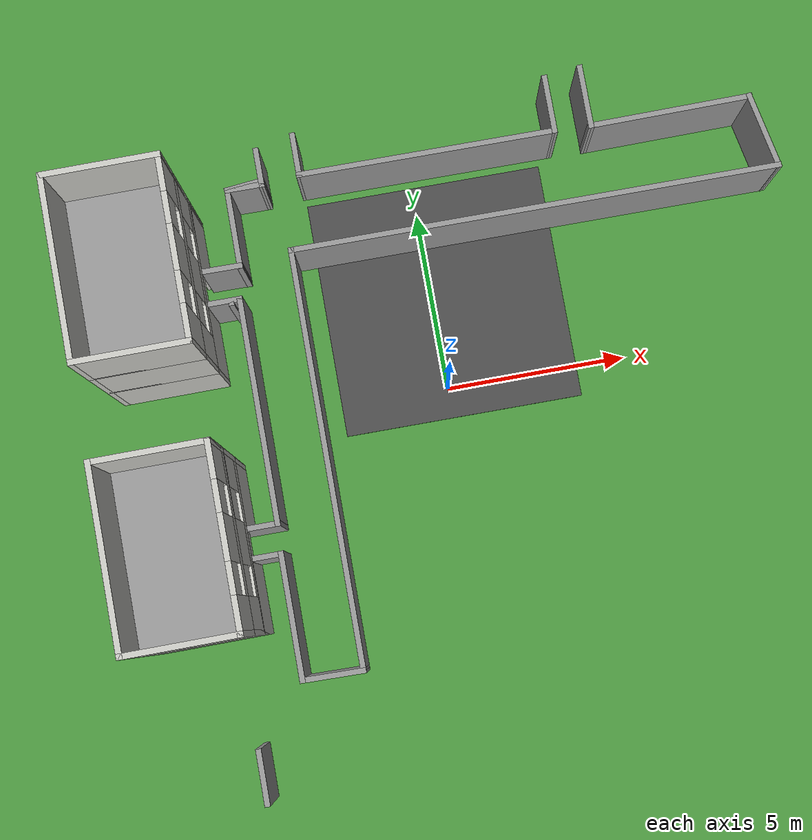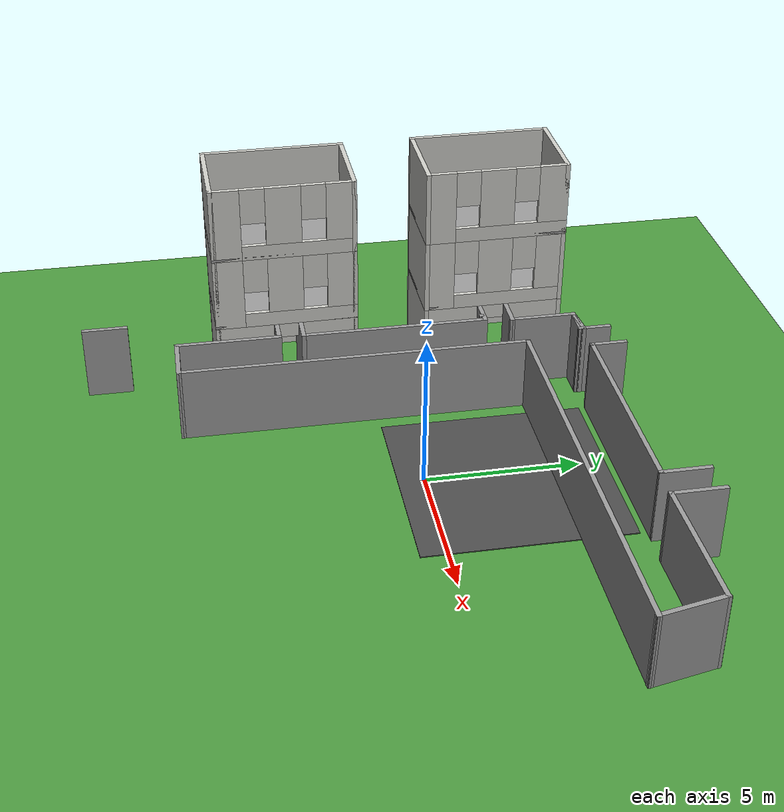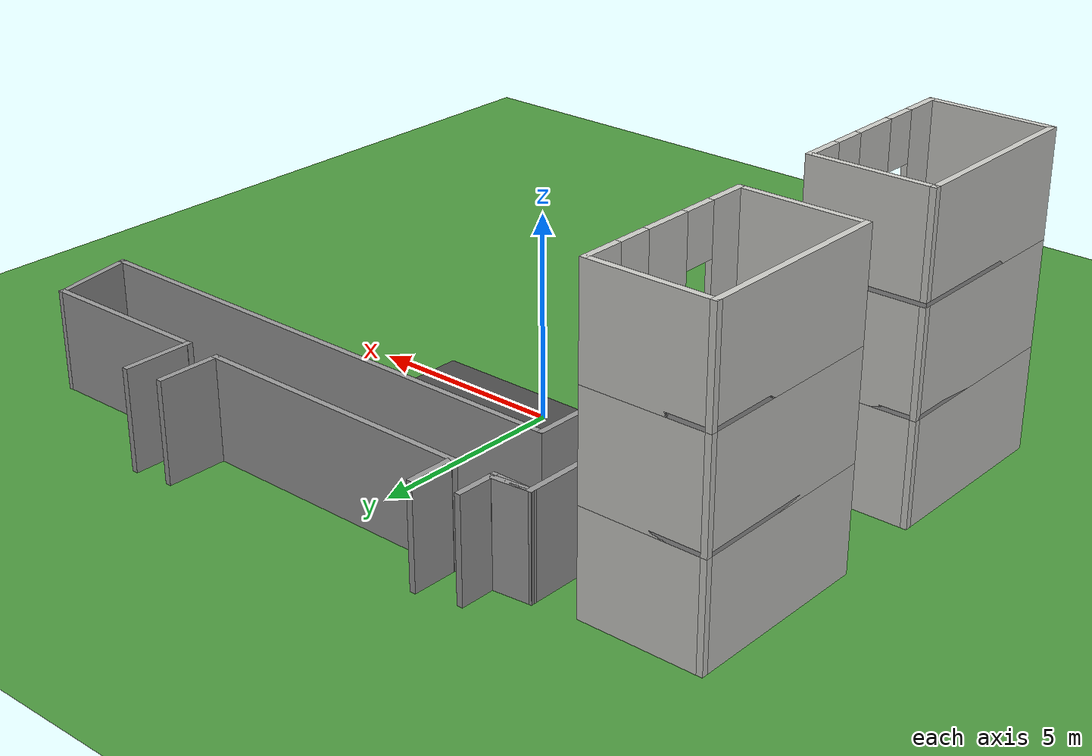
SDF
<sdf version="1.7">
 <world name="default">
  <model name="ground_plane">
   <static>1</static>
   <link name="link">
    <collision name="collision">
     <geometry><plane><normal>0 0 1</normal><size>100 100</size></plane></geometry>
     <surface><friction><ode><mu>100</mu><mu2>50</mu2></ode></friction></surface>
    </collision>
    <visual name="visual">
     <cast_shadows>0</cast_shadows>
     <geometry><plane><normal>0 0 1</normal><size>100 100</size></plane></geometry>
     <material>
      <script><uri>file://media/materials/scripts/gazebo.material</uri><name>Gazebo/Grass</name></script>
     </material>
    </visual>
   </link>
  </model>
  <model name="asphalt_plane">
   <static>1</static>
   <link name="link">
    <collision name="collision"><geometry><box><size>6.66663 6.66668 0.033333</size></box></geometry></collision>
    <visual name="visual">
     <cast_shadows>0</cast_shadows>
     <geometry><box><size>6.66663 6.66668 0.033333</size></box></geometry>
     <material>
      <script>
       <uri>model://asphalt_plane/materials/scripts</uri>
       <uri>model://asphalt_plane/materials/textures</uri>
       <name>vrc/asphalt</name>
      </script>
     </material>
    </visual>
   </link>
   <pose>0.322432 2.4947 0 0 -0 0</pose>
  </model>
  <model name="apt_0_clone">
   <pose>-7.51135 3.50237 0 0 -0 1.5769</pose>
   <link name="Floor_10">
    <collision name="Floor_10_Collision">
     <geometry><box><size>4.75 3 0.1</size></box></geometry>
     <pose>0 0 0.05 0 -0 0</pose>
    </collision>
    <visual name="Floor_10_Visual">
     <pose>0 0 0.05 0 -0 0</pose>
     <geometry><box><size>4.75 3 0.1</size></box></geometry>
     <material>
      <script><uri>file://media/materials/scripts/gazebo.material</uri><name>Gazebo/Grey</name></script>
      <ambient>1 1 1 1</ambient>
     </material>
     <meta><layer>2</layer></meta>
    </visual>
    <pose>-0 0 5 0 -0 0</pose>
   </link>
   <link name="Floor_9">
    <collision name="Floor_9_Collision">
     <geometry><box><size>4.75 3 0.1</size></box></geometry>
     <pose>0 0 0.05 0 -0 0</pose>
    </collision>
    <visual name="Floor_9_Visual">
     <pose>0 0 0.05 0 -0 0</pose>
     <geometry><box><size>4.75 3 0.1</size></box></geometry>
     <material>
      <script><uri>file://media/materials/scripts/gazebo.material</uri><name>Gazebo/Grey</name></script>
      <ambient>1 1 1 1</ambient>
     </material>
     <meta><layer>1</layer></meta>
    </visual>
    <pose>-0 0 2.5 0 -0 0</pose>
   </link>
   <link name="Wall_1">
    <collision name="Wall_1_Collision">
     <geometry><box><size>3 0.15 2.5</size></box></geometry>
     <pose>0 0 1.25 0 -0 0</pose>
    </collision>
    <visual name="Wall_1_Visual">
     <pose>0 0 1.25 0 -0 0</pose>
     <geometry><box><size>3 0.15 2.5</size></box></geometry>
     <material>
      <script><uri>file://media/materials/scripts/gazebo.material</uri><name>Gazebo/CeilingTiled</name></script>
      <ambient>1 1 1 1</ambient>
     </material>
     <meta><layer>0</layer></meta>
    </visual>
    <pose>-2.3 0 0 0 -0 -1.5708</pose>
   </link>
   <link name="Wall_2">
    <pose>-0 -1.425 0 0 -0 0</pose>
    <visual name="Wall_2_Visual_0">
     <pose>-1.4125 0 1.25 0 -0 0</pose>
     <geometry><box><size>1.925 0.15 2.5</size></box></geometry>
     <material>
      <script><uri>file://media/materials/scripts/gazebo.material</uri><name>Gazebo/CeilingTiled</name></script>
      <ambient>1 1 1 1</ambient>
     </material>
     <meta><layer>0</layer></meta>
    </visual>
    <collision name="Wall_2_Collision_0">
     <geometry><box><size>1.925 0.15 2.5</size></box></geometry>
     <pose>-1.4125 0 1.25 0 -0 0</pose>
    </collision>
    <visual name="Wall_2_Visual_1">
     <pose>1.4125 0 1.25 0 -0 0</pose>
     <geometry><box><size>1.925 0.15 2.5</size></box></geometry>
     <material>
      <script><uri>file://media/materials/scripts/gazebo.material</uri><name>Gazebo/CeilingTiled</name></script>
      <ambient>1 1 1 1</ambient>
     </material>
     <meta><layer>0</layer></meta>
    </visual>
    <collision name="Wall_2_Collision_1">
     <geometry><box><size>1.925 0.15 2.5</size></box></geometry>
     <pose>1.4125 0 1.25 0 -0 0</pose>
    </collision>
    <visual name="Wall_2_Visual_2">
     <pose>0 0 2.25 0 -0 0</pose>
     <geometry><box><size>0.9 0.15 0.5</size></box></geometry>
     <material>
      <script><uri>file://media/materials/scripts/gazebo.material</uri><name>Gazebo/CeilingTiled</name></script>
      <ambient>1 1 1 1</ambient>
     </material>
     <meta><layer>0</layer></meta>
    </visual>
    <collision name="Wall_2_Collision_2">
     <geometry><box><size>0.9 0.15 0.5</size></box></geometry>
     <pose>0 0 2.25 0 -0 0</pose>
    </collision>
   </link>
   <link name="Wall_3">
    <collision name="Wall_3_Collision">
     <geometry><box><size>3 0.15 2.5</size></box></geometry>
     <pose>0 0 1.25 0 -0 0</pose>
    </collision>
    <visual name="Wall_3_Visual">
     <pose>0 0 1.25 0 -0 0</pose>
     <geometry><box><size>3 0.15 2.5</size></box></geometry>
     <material>
      <script><uri>file://media/materials/scripts/gazebo.material</uri><name>Gazebo/CeilingTiled</name></script>
      <ambient>1 1 1 1</ambient>
     </material>
     <meta><layer>0</layer></meta>
    </visual>
    <pose>2.3 0 0 0 -0 1.5708</pose>
   </link>
   <link name="Wall_4">
    <collision name="Wall_4_Collision">
     <geometry><box><size>4.75 0.15 2.5</size></box></geometry>
     <pose>0 0 1.25 0 -0 0</pose>
    </collision>
    <visual name="Wall_4_Visual">
     <pose>0 0 1.25 0 -0 0</pose>
     <geometry><box><size>4.75 0.15 2.5</size></box></geometry>
     <material>
      <script><uri>file://media/materials/scripts/gazebo.material</uri><name>Gazebo/CeilingTiled</name></script>
      <ambient>1 1 1 1</ambient>
     </material>
     <meta><layer>0</layer></meta>
    </visual>
    <pose>-0 1.425 0 0 -0 3.14159</pose>
   </link>
   <link name="Wall_42">
    <collision name="Wall_42_Collision">
     <geometry><box><size>3 0.15 2.5</size></box></geometry>
     <pose>0 0 1.25 0 -0 0</pose>
    </collision>
    <visual name="Wall_42_Visual">
     <pose>0 0 1.25 0 -0 0</pose>
     <geometry><box><size>3 0.15 2.5</size></box></geometry>
     <material>
      <script><uri>file://media/materials/scripts/gazebo.material</uri><name>Gazebo/CeilingTiled</name></script>
      <ambient>1 1 1 1</ambient>
     </material>
     <meta><layer>1</layer></meta>
    </visual>
    <pose>-2.3 0 2.5 0 -0 -1.5708</pose>
   </link>
   <link name="Wall_43">
    <pose>-0 -1.425 2.5 0 -0 0</pose>
    <visual name="Wall_43_Visual_0">
     <pose>-1.87625 0 1.25 0 -0 0</pose>
     <geometry><box><size>0.9975 0.15 2.5</size></box></geometry>
     <material>
      <script><uri>file://media/materials/scripts/gazebo.material</uri><name>Gazebo/CeilingTiled</name></script>
      <ambient>1 1 1 1</ambient>
     </material>
     <meta><layer>1</layer></meta>
    </visual>
    <collision name="Wall_43_Collision_0">
     <geometry><box><size>0.9975 0.15 2.5</size></box></geometry>
     <pose>-1.87625 0 1.25 0 -0 0</pose>
    </collision>
    <visual name="Wall_43_Visual_1">
     <pose>0.49875 0 0.25 0 -0 0</pose>
     <geometry><box><size>3.7525 0.15 0.5</size></box></geometry>
     <material>
      <script><uri>file://media/materials/scripts/gazebo.material</uri><name>Gazebo/CeilingTiled</name></script>
      <ambient>1 1 1 1</ambient>
     </material>
     <meta><layer>1</layer></meta>
    </visual>
    <collision name="Wall_43_Collision_1">
     <geometry><box><size>3.7525 0.15 0.5</size></box></geometry>
     <pose>0.49875 0 0.25 0 -0 0</pose>
    </collision>
    <visual name="Wall_43_Visual_2">
     <pose>0 0 1.5 0 -0 0</pose>
     <geometry><box><size>1.155 0.15 2</size></box></geometry>
     <material>
      <script><uri>file://media/materials/scripts/gazebo.material</uri><name>Gazebo/CeilingTiled</name></script>
      <ambient>1 1 1 1</ambient>
     </material>
     <meta><layer>1</layer></meta>
    </visual>
    <collision name="Wall_43_Collision_2">
     <geometry><box><size>1.155 0.15 2</size></box></geometry>
     <pose>0 0 1.5 0 -0 0</pose>
    </collision>
    <visual name="Wall_43_Visual_3">
     <pose>1.87625 0 1.5 0 -0 0</pose>
     <geometry><box><size>0.9975 0.15 2</size></box></geometry>
     <material>
      <script><uri>file://media/materials/scripts/gazebo.material</uri><name>Gazebo/CeilingTiled</name></script>
      <ambient>1 1 1 1</ambient>
     </material>
     <meta><layer>1</layer></meta>
    </visual>
    <collision name="Wall_43_Collision_3">
     <geometry><box><size>0.9975 0.15 2</size></box></geometry>
     <pose>1.87625 0 1.5 0 -0 0</pose>
    </collision>
    <visual name="Wall_43_Visual_4">
     <pose>-0.9775 0 1.9 0 -0 0</pose>
     <geometry><box><size>0.8 0.15 1.2</size></box></geometry>
     <material>
      <script><uri>file://media/materials/scripts/gazebo.material</uri><name>Gazebo/CeilingTiled</name></script>
      <ambient>1 1 1 1</ambient>
     </material>
     <meta><layer>1</layer></meta>
    </visual>
    <collision name="Wall_43_Collision_4">
     <geometry><box><size>0.8 0.15 1.2</size></box></geometry>
     <pose>-0.9775 0 1.9 0 -0 0</pose>
    </collision>
    <visual name="Wall_43_Visual_5">
     <pose>0.9775 0 1.9 0 -0 0</pose>
     <geometry><box><size>0.8 0.15 1.2</size></box></geometry>
     <material>
      <script><uri>file://media/materials/scripts/gazebo.material</uri><name>Gazebo/CeilingTiled</name></script>
      <ambient>1 1 1 1</ambient>
     </material>
     <meta><layer>1</layer></meta>
    </visual>
    <collision name="Wall_43_Collision_5">
     <geometry><box><size>0.8 0.15 1.2</size></box></geometry>
     <pose>0.9775 0 1.9 0 -0 0</pose>
    </collision>
   </link>
   <link name="Wall_44">
    <collision name="Wall_44_Collision">
     <geometry><box><size>3 0.15 2.5</size></box></geometry>
     <pose>0 0 1.25 0 -0 0</pose>
    </collision>
    <visual name="Wall_44_Visual">
     <pose>0 0 1.25 0 -0 0</pose>
     <geometry><box><size>3 0.15 2.5</size></box></geometry>
     <material>
      <script><uri>file://media/materials/scripts/gazebo.material</uri><name>Gazebo/CeilingTiled</name></script>
      <ambient>1 1 1 1</ambient>
     </material>
     <meta><layer>1</layer></meta>
    </visual>
    <pose>2.3 0 2.5 0 -0 1.5708</pose>
   </link>
   <link name="Wall_45">
    <collision name="Wall_45_Collision">
     <geometry><box><size>4.75 0.15 2.5</size></box></geometry>
     <pose>0 0 1.25 0 -0 0</pose>
    </collision>
    <visual name="Wall_45_Visual">
     <pose>0 0 1.25 0 -0 0</pose>
     <geometry><box><size>4.75 0.15 2.5</size></box></geometry>
     <material>
      <script><uri>file://media/materials/scripts/gazebo.material</uri><name>Gazebo/CeilingTiled</name></script>
      <ambient>1 1 1 1</ambient>
     </material>
     <meta><layer>1</layer></meta>
    </visual>
    <pose>-0 1.425 2.5 0 -0 3.14159</pose>
   </link>
   <link name="Wall_46">
    <collision name="Wall_46_Collision">
     <geometry><box><size>3 0.15 2.5</size></box></geometry>
     <pose>0 0 1.25 0 -0 0</pose>
    </collision>
    <visual name="Wall_46_Visual">
     <pose>0 0 1.25 0 -0 0</pose>
     <geometry><box><size>3 0.15 2.5</size></box></geometry>
     <material>
      <script><uri>file://media/materials/scripts/gazebo.material</uri><name>Gazebo/CeilingTiled</name></script>
      <ambient>1 1 1 1</ambient>
     </material>
     <meta><layer>2</layer></meta>
    </visual>
    <pose>-2.3 0 5 0 -0 -1.5708</pose>
   </link>
   <link name="Wall_47">
    <pose>-0 -1.425 5 0 -0 0</pose>
    <visual name="Wall_47_Visual_0">
     <pose>-1.87625 0 1.25 0 -0 0</pose>
     <geometry><box><size>0.9975 0.15 2.5</size></box></geometry>
     <material>
      <script><uri>file://media/materials/scripts/gazebo.material</uri><name>Gazebo/CeilingTiled</name></script>
      <ambient>1 1 1 1</ambient>
     </material>
     <meta><layer>2</layer></meta>
    </visual>
    <collision name="Wall_47_Collision_0">
     <geometry><box><size>0.9975 0.15 2.5</size></box></geometry>
     <pose>-1.87625 0 1.25 0 -0 0</pose>
    </collision>
    <visual name="Wall_47_Visual_1">
     <pose>0.49875 0 0.25 0 -0 0</pose>
     <geometry><box><size>3.7525 0.15 0.5</size></box></geometry>
     <material>
      <script><uri>file://media/materials/scripts/gazebo.material</uri><name>Gazebo/CeilingTiled</name></script>
      <ambient>1 1 1 1</ambient>
     </material>
     <meta><layer>2</layer></meta>
    </visual>
    <collision name="Wall_47_Collision_1">
     <geometry><box><size>3.7525 0.15 0.5</size></box></geometry>
     <pose>0.49875 0 0.25 0 -0 0</pose>
    </collision>
    <visual name="Wall_47_Visual_2">
     <pose>0 0 1.5 0 -0 0</pose>
     <geometry><box><size>1.155 0.15 2</size></box></geometry>
     <material>
      <script><uri>file://media/materials/scripts/gazebo.material</uri><name>Gazebo/CeilingTiled</name></script>
      <ambient>1 1 1 1</ambient>
     </material>
     <meta><layer>2</layer></meta>
    </visual>
    <collision name="Wall_47_Collision_2">
     <geometry><box><size>1.155 0.15 2</size></box></geometry>
     <pose>0 0 1.5 0 -0 0</pose>
    </collision>
    <visual name="Wall_47_Visual_3">
     <pose>1.87625 0 1.5 0 -0 0</pose>
     <geometry><box><size>0.9975 0.15 2</size></box></geometry>
     <material>
      <script><uri>file://media/materials/scripts/gazebo.material</uri><name>Gazebo/CeilingTiled</name></script>
      <ambient>1 1 1 1</ambient>
     </material>
     <meta><layer>2</layer></meta>
    </visual>
    <collision name="Wall_47_Collision_3">
     <geometry><box><size>0.9975 0.15 2</size></box></geometry>
     <pose>1.87625 0 1.5 0 -0 0</pose>
    </collision>
    <visual name="Wall_47_Visual_4">
     <pose>-0.9775 0 1.9 0 -0 0</pose>
     <geometry><box><size>0.8 0.15 1.2</size></box></geometry>
     <material>
      <script><uri>file://media/materials/scripts/gazebo.material</uri><name>Gazebo/CeilingTiled</name></script>
      <ambient>1 1 1 1</ambient>
     </material>
     <meta><layer>2</layer></meta>
    </visual>
    <collision name="Wall_47_Collision_4">
     <geometry><box><size>0.8 0.15 1.2</size></box></geometry>
     <pose>-0.9775 0 1.9 0 -0 0</pose>
    </collision>
    <visual name="Wall_47_Visual_5">
     <pose>0.9775 0 1.9 0 -0 0</pose>
     <geometry><box><size>0.8 0.15 1.2</size></box></geometry>
     <material>
      <script><uri>file://media/materials/scripts/gazebo.material</uri><name>Gazebo/CeilingTiled</name></script>
      <ambient>1 1 1 1</ambient>
     </material>
     <meta><layer>2</layer></meta>
    </visual>
    <collision name="Wall_47_Collision_5">
     <geometry><box><size>0.8 0.15 1.2</size></box></geometry>
     <pose>0.9775 0 1.9 0 -0 0</pose>
    </collision>
   </link>
   <link name="Wall_48">
    <collision name="Wall_48_Collision">
     <geometry><box><size>3 0.15 2.5</size></box></geometry>
     <pose>0 0 1.25 0 -0 0</pose>
    </collision>
    <visual name="Wall_48_Visual">
     <pose>0 0 1.25 0 -0 0</pose>
     <geometry><box><size>3 0.15 2.5</size></box></geometry>
     <material>
      <script><uri>file://media/materials/scripts/gazebo.material</uri><name>Gazebo/CeilingTiled</name></script>
      <ambient>1 1 1 1</ambient>
     </material>
     <meta><layer>2</layer></meta>
    </visual>
    <pose>2.3 0 5 0 -0 1.5708</pose>
   </link>
   <link name="Wall_49">
    <collision name="Wall_49_Collision">
     <geometry><box><size>4.75 0.15 2.5</size></box></geometry>
     <pose>0 0 1.25 0 -0 0</pose>
    </collision>
    <visual name="Wall_49_Visual">
     <pose>0 0 1.25 0 -0 0</pose>
     <geometry><box><size>4.75 0.15 2.5</size></box></geometry>
     <material>
      <script><uri>file://media/materials/scripts/gazebo.material</uri><name>Gazebo/CeilingTiled</name></script>
      <ambient>1 1 1 1</ambient>
     </material>
     <meta><layer>2</layer></meta>
    </visual>
    <pose>-0 1.425 5 0 -0 3.14159</pose>
   </link>
   <static>1</static>
  </model>
  <model name="apt_0_clone_clone">
   <pose>-7.45101 -3.51166 0 0 -0 1.5769</pose>
   <link name="Floor_10">
    <collision name="Floor_10_Collision">
     <geometry><box><size>4.75 3 0.1</size></box></geometry>
     <pose>0 0 0.05 0 -0 0</pose>
    </collision>
    <visual name="Floor_10_Visual">
     <pose>0 0 0.05 0 -0 0</pose>
     <geometry><box><size>4.75 3 0.1</size></box></geometry>
     <material>
      <script><uri>file://media/materials/scripts/gazebo.material</uri><name>Gazebo/Grey</name></script>
      <ambient>1 1 1 1</ambient>
     </material>
     <meta><layer>2</layer></meta>
    </visual>
    <pose>-0 0 5 0 -0 0</pose>
   </link>
   <link name="Floor_9">
    <collision name="Floor_9_Collision">
     <geometry><box><size>4.75 3 0.1</size></box></geometry>
     <pose>0 0 0.05 0 -0 0</pose>
    </collision>
    <visual name="Floor_9_Visual">
     <pose>0 0 0.05 0 -0 0</pose>
     <geometry><box><size>4.75 3 0.1</size></box></geometry>
     <material>
      <script><uri>file://media/materials/scripts/gazebo.material</uri><name>Gazebo/Grey</name></script>
      <ambient>1 1 1 1</ambient>
     </material>
     <meta><layer>1</layer></meta>
    </visual>
    <pose>-0 0 2.5 0 -0 0</pose>
   </link>
   <link name="Wall_1">
    <collision name="Wall_1_Collision">
     <geometry><box><size>3 0.15 2.5</size></box></geometry>
     <pose>0 0 1.25 0 -0 0</pose>
    </collision>
    <visual name="Wall_1_Visual">
     <pose>0 0 1.25 0 -0 0</pose>
     <geometry><box><size>3 0.15 2.5</size></box></geometry>
     <material>
      <script><uri>file://media/materials/scripts/gazebo.material</uri><name>Gazebo/CeilingTiled</name></script>
      <ambient>1 1 1 1</ambient>
     </material>
     <meta><layer>0</layer></meta>
    </visual>
    <pose>-2.3 0 0 0 -0 -1.5708</pose>
   </link>
   <link name="Wall_2">
    <pose>-0 -1.425 0 0 -0 0</pose>
    <visual name="Wall_2_Visual_0">
     <pose>-1.4125 0 1.25 0 -0 0</pose>
     <geometry><box><size>1.925 0.15 2.5</size></box></geometry>
     <material>
      <script><uri>file://media/materials/scripts/gazebo.material</uri><name>Gazebo/CeilingTiled</name></script>
      <ambient>1 1 1 1</ambient>
     </material>
     <meta><layer>0</layer></meta>
    </visual>
    <collision name="Wall_2_Collision_0">
     <geometry><box><size>1.925 0.15 2.5</size></box></geometry>
     <pose>-1.4125 0 1.25 0 -0 0</pose>
    </collision>
    <visual name="Wall_2_Visual_1">
     <pose>1.4125 0 1.25 0 -0 0</pose>
     <geometry><box><size>1.925 0.15 2.5</size></box></geometry>
     <material>
      <script><uri>file://media/materials/scripts/gazebo.material</uri><name>Gazebo/CeilingTiled</name></script>
      <ambient>1 1 1 1</ambient>
     </material>
     <meta><layer>0</layer></meta>
    </visual>
    <collision name="Wall_2_Collision_1">
     <geometry><box><size>1.925 0.15 2.5</size></box></geometry>
     <pose>1.4125 0 1.25 0 -0 0</pose>
    </collision>
    <visual name="Wall_2_Visual_2">
     <pose>0 0 2.25 0 -0 0</pose>
     <geometry><box><size>0.9 0.15 0.5</size></box></geometry>
     <material>
      <script><uri>file://media/materials/scripts/gazebo.material</uri><name>Gazebo/CeilingTiled</name></script>
      <ambient>1 1 1 1</ambient>
     </material>
     <meta><layer>0</layer></meta>
    </visual>
    <collision name="Wall_2_Collision_2">
     <geometry><box><size>0.9 0.15 0.5</size></box></geometry>
     <pose>0 0 2.25 0 -0 0</pose>
    </collision>
   </link>
   <link name="Wall_3">
    <collision name="Wall_3_Collision">
     <geometry><box><size>3 0.15 2.5</size></box></geometry>
     <pose>0 0 1.25 0 -0 0</pose>
    </collision>
    <visual name="Wall_3_Visual">
     <pose>0 0 1.25 0 -0 0</pose>
     <geometry><box><size>3 0.15 2.5</size></box></geometry>
     <material>
      <script><uri>file://media/materials/scripts/gazebo.material</uri><name>Gazebo/CeilingTiled</name></script>
      <ambient>1 1 1 1</ambient>
     </material>
     <meta><layer>0</layer></meta>
    </visual>
    <pose>2.3 0 0 0 -0 1.5708</pose>
   </link>
   <link name="Wall_4">
    <collision name="Wall_4_Collision">
     <geometry><box><size>4.75 0.15 2.5</size></box></geometry>
     <pose>0 0 1.25 0 -0 0</pose>
    </collision>
    <visual name="Wall_4_Visual">
     <pose>0 0 1.25 0 -0 0</pose>
     <geometry><box><size>4.75 0.15 2.5</size></box></geometry>
     <material>
      <script><uri>file://media/materials/scripts/gazebo.material</uri><name>Gazebo/CeilingTiled</name></script>
      <ambient>1 1 1 1</ambient>
     </material>
     <meta><layer>0</layer></meta>
    </visual>
    <pose>-0 1.425 0 0 -0 3.14159</pose>
   </link>
   <link name="Wall_42">
    <collision name="Wall_42_Collision">
     <geometry><box><size>3 0.15 2.5</size></box></geometry>
     <pose>0 0 1.25 0 -0 0</pose>
    </collision>
    <visual name="Wall_42_Visual">
     <pose>0 0 1.25 0 -0 0</pose>
     <geometry><box><size>3 0.15 2.5</size></box></geometry>
     <material>
      <script><uri>file://media/materials/scripts/gazebo.material</uri><name>Gazebo/CeilingTiled</name></script>
      <ambient>1 1 1 1</ambient>
     </material>
     <meta><layer>1</layer></meta>
    </visual>
    <pose>-2.3 0 2.5 0 -0 -1.5708</pose>
   </link>
   <link name="Wall_43">
    <pose>-0 -1.425 2.5 0 -0 0</pose>
    <visual name="Wall_43_Visual_0">
     <pose>-1.87625 0 1.25 0 -0 0</pose>
     <geometry><box><size>0.9975 0.15 2.5</size></box></geometry>
     <material>
      <script><uri>file://media/materials/scripts/gazebo.material</uri><name>Gazebo/CeilingTiled</name></script>
      <ambient>1 1 1 1</ambient>
     </material>
     <meta><layer>1</layer></meta>
    </visual>
    <collision name="Wall_43_Collision_0">
     <geometry><box><size>0.9975 0.15 2.5</size></box></geometry>
     <pose>-1.87625 0 1.25 0 -0 0</pose>
    </collision>
    <visual name="Wall_43_Visual_1">
     <pose>0.49875 0 0.25 0 -0 0</pose>
     <geometry><box><size>3.7525 0.15 0.5</size></box></geometry>
     <material>
      <script><uri>file://media/materials/scripts/gazebo.material</uri><name>Gazebo/CeilingTiled</name></script>
      <ambient>1 1 1 1</ambient>
     </material>
     <meta><layer>1</layer></meta>
    </visual>
    <collision name="Wall_43_Collision_1">
     <geometry><box><size>3.7525 0.15 0.5</size></box></geometry>
     <pose>0.49875 0 0.25 0 -0 0</pose>
    </collision>
    <visual name="Wall_43_Visual_2">
     <pose>0 0 1.5 0 -0 0</pose>
     <geometry><box><size>1.155 0.15 2</size></box></geometry>
     <material>
      <script><uri>file://media/materials/scripts/gazebo.material</uri><name>Gazebo/CeilingTiled</name></script>
      <ambient>1 1 1 1</ambient>
     </material>
     <meta><layer>1</layer></meta>
    </visual>
    <collision name="Wall_43_Collision_2">
     <geometry><box><size>1.155 0.15 2</size></box></geometry>
     <pose>0 0 1.5 0 -0 0</pose>
    </collision>
    <visual name="Wall_43_Visual_3">
     <pose>1.87625 0 1.5 0 -0 0</pose>
     <geometry><box><size>0.9975 0.15 2</size></box></geometry>
     <material>
      <script><uri>file://media/materials/scripts/gazebo.material</uri><name>Gazebo/CeilingTiled</name></script>
      <ambient>1 1 1 1</ambient>
     </material>
     <meta><layer>1</layer></meta>
    </visual>
    <collision name="Wall_43_Collision_3">
     <geometry><box><size>0.9975 0.15 2</size></box></geometry>
     <pose>1.87625 0 1.5 0 -0 0</pose>
    </collision>
    <visual name="Wall_43_Visual_4">
     <pose>-0.9775 0 1.9 0 -0 0</pose>
     <geometry><box><size>0.8 0.15 1.2</size></box></geometry>
     <material>
      <script><uri>file://media/materials/scripts/gazebo.material</uri><name>Gazebo/CeilingTiled</name></script>
      <ambient>1 1 1 1</ambient>
     </material>
     <meta><layer>1</layer></meta>
    </visual>
    <collision name="Wall_43_Collision_4">
     <geometry><box><size>0.8 0.15 1.2</size></box></geometry>
     <pose>-0.9775 0 1.9 0 -0 0</pose>
    </collision>
    <visual name="Wall_43_Visual_5">
     <pose>0.9775 0 1.9 0 -0 0</pose>
     <geometry><box><size>0.8 0.15 1.2</size></box></geometry>
     <material>
      <script><uri>file://media/materials/scripts/gazebo.material</uri><name>Gazebo/CeilingTiled</name></script>
      <ambient>1 1 1 1</ambient>
     </material>
     <meta><layer>1</layer></meta>
    </visual>
    <collision name="Wall_43_Collision_5">
     <geometry><box><size>0.8 0.15 1.2</size></box></geometry>
     <pose>0.9775 0 1.9 0 -0 0</pose>
    </collision>
   </link>
   <link name="Wall_44">
    <collision name="Wall_44_Collision">
     <geometry><box><size>3 0.15 2.5</size></box></geometry>
     <pose>0 0 1.25 0 -0 0</pose>
    </collision>
    <visual name="Wall_44_Visual">
     <pose>0 0 1.25 0 -0 0</pose>
     <geometry><box><size>3 0.15 2.5</size></box></geometry>
     <material>
      <script><uri>file://media/materials/scripts/gazebo.material</uri><name>Gazebo/CeilingTiled</name></script>
      <ambient>1 1 1 1</ambient>
     </material>
     <meta><layer>1</layer></meta>
    </visual>
    <pose>2.3 0 2.5 0 -0 1.5708</pose>
   </link>
   <link name="Wall_45">
    <collision name="Wall_45_Collision">
     <geometry><box><size>4.75 0.15 2.5</size></box></geometry>
     <pose>0 0 1.25 0 -0 0</pose>
    </collision>
    <visual name="Wall_45_Visual">
     <pose>0 0 1.25 0 -0 0</pose>
     <geometry><box><size>4.75 0.15 2.5</size></box></geometry>
     <material>
      <script><uri>file://media/materials/scripts/gazebo.material</uri><name>Gazebo/CeilingTiled</name></script>
      <ambient>1 1 1 1</ambient>
     </material>
     <meta><layer>1</layer></meta>
    </visual>
    <pose>-0 1.425 2.5 0 -0 3.14159</pose>
   </link>
   <link name="Wall_46">
    <collision name="Wall_46_Collision">
     <geometry><box><size>3 0.15 2.5</size></box></geometry>
     <pose>0 0 1.25 0 -0 0</pose>
    </collision>
    <visual name="Wall_46_Visual">
     <pose>0 0 1.25 0 -0 0</pose>
     <geometry><box><size>3 0.15 2.5</size></box></geometry>
     <material>
      <script><uri>file://media/materials/scripts/gazebo.material</uri><name>Gazebo/CeilingTiled</name></script>
      <ambient>1 1 1 1</ambient>
     </material>
     <meta><layer>2</layer></meta>
    </visual>
    <pose>-2.3 0 5 0 -0 -1.5708</pose>
   </link>
   <link name="Wall_47">
    <pose>-0 -1.425 5 0 -0 0</pose>
    <visual name="Wall_47_Visual_0">
     <pose>-1.87625 0 1.25 0 -0 0</pose>
     <geometry><box><size>0.9975 0.15 2.5</size></box></geometry>
     <material>
      <script><uri>file://media/materials/scripts/gazebo.material</uri><name>Gazebo/CeilingTiled</name></script>
      <ambient>1 1 1 1</ambient>
     </material>
     <meta><layer>2</layer></meta>
    </visual>
    <collision name="Wall_47_Collision_0">
     <geometry><box><size>0.9975 0.15 2.5</size></box></geometry>
     <pose>-1.87625 0 1.25 0 -0 0</pose>
    </collision>
    <visual name="Wall_47_Visual_1">
     <pose>0.49875 0 0.25 0 -0 0</pose>
     <geometry><box><size>3.7525 0.15 0.5</size></box></geometry>
     <material>
      <script><uri>file://media/materials/scripts/gazebo.material</uri><name>Gazebo/CeilingTiled</name></script>
      <ambient>1 1 1 1</ambient>
     </material>
     <meta><layer>2</layer></meta>
    </visual>
    <collision name="Wall_47_Collision_1">
     <geometry><box><size>3.7525 0.15 0.5</size></box></geometry>
     <pose>0.49875 0 0.25 0 -0 0</pose>
    </collision>
    <visual name="Wall_47_Visual_2">
     <pose>0 0 1.5 0 -0 0</pose>
     <geometry><box><size>1.155 0.15 2</size></box></geometry>
     <material>
      <script><uri>file://media/materials/scripts/gazebo.material</uri><name>Gazebo/CeilingTiled</name></script>
      <ambient>1 1 1 1</ambient>
     </material>
     <meta><layer>2</layer></meta>
    </visual>
    <collision name="Wall_47_Collision_2">
     <geometry><box><size>1.155 0.15 2</size></box></geometry>
     <pose>0 0 1.5 0 -0 0</pose>
    </collision>
    <visual name="Wall_47_Visual_3">
     <pose>1.87625 0 1.5 0 -0 0</pose>
     <geometry><box><size>0.9975 0.15 2</size></box></geometry>
     <material>
      <script><uri>file://media/materials/scripts/gazebo.material</uri><name>Gazebo/CeilingTiled</name></script>
      <ambient>1 1 1 1</ambient>
     </material>
     <meta><layer>2</layer></meta>
    </visual>
    <collision name="Wall_47_Collision_3">
     <geometry><box><size>0.9975 0.15 2</size></box></geometry>
     <pose>1.87625 0 1.5 0 -0 0</pose>
    </collision>
    <visual name="Wall_47_Visual_4">
     <pose>-0.9775 0 1.9 0 -0 0</pose>
     <geometry><box><size>0.8 0.15 1.2</size></box></geometry>
     <material>
      <script><uri>file://media/materials/scripts/gazebo.material</uri><name>Gazebo/CeilingTiled</name></script>
      <ambient>1 1 1 1</ambient>
     </material>
     <meta><layer>2</layer></meta>
    </visual>
    <collision name="Wall_47_Collision_4">
     <geometry><box><size>0.8 0.15 1.2</size></box></geometry>
     <pose>-0.9775 0 1.9 0 -0 0</pose>
    </collision>
    <visual name="Wall_47_Visual_5">
     <pose>0.9775 0 1.9 0 -0 0</pose>
     <geometry><box><size>0.8 0.15 1.2</size></box></geometry>
     <material>
      <script><uri>file://media/materials/scripts/gazebo.material</uri><name>Gazebo/CeilingTiled</name></script>
      <ambient>1 1 1 1</ambient>
     </material>
     <meta><layer>2</layer></meta>
    </visual>
    <collision name="Wall_47_Collision_5">
     <geometry><box><size>0.8 0.15 1.2</size></box></geometry>
     <pose>0.9775 0 1.9 0 -0 0</pose>
    </collision>
   </link>
   <link name="Wall_48">
    <collision name="Wall_48_Collision">
     <geometry><box><size>3 0.15 2.5</size></box></geometry>
     <pose>0 0 1.25 0 -0 0</pose>
    </collision>
    <visual name="Wall_48_Visual">
     <pose>0 0 1.25 0 -0 0</pose>
     <geometry><box><size>3 0.15 2.5</size></box></geometry>
     <material>
      <script><uri>file://media/materials/scripts/gazebo.material</uri><name>Gazebo/CeilingTiled</name></script>
      <ambient>1 1 1 1</ambient>
     </material>
     <meta><layer>2</layer></meta>
    </visual>
    <pose>2.3 0 5 0 -0 1.5708</pose>
   </link>
   <link name="Wall_49">
    <collision name="Wall_49_Collision">
     <geometry><box><size>4.75 0.15 2.5</size></box></geometry>
     <pose>0 0 1.25 0 -0 0</pose>
    </collision>
    <visual name="Wall_49_Visual">
     <pose>0 0 1.25 0 -0 0</pose>
     <geometry><box><size>4.75 0.15 2.5</size></box></geometry>
     <material>
      <script><uri>file://media/materials/scripts/gazebo.material</uri><name>Gazebo/CeilingTiled</name></script>
      <ambient>1 1 1 1</ambient>
     </material>
     <meta><layer>2</layer></meta>
    </visual>
    <pose>-0 1.425 5 0 -0 3.14159</pose>
   </link>
   <static>1</static>
  </model>
  <model name="mypath">
   <pose>1.50454 -1.24093 0 0 -0 0</pose>
   <link name="Wall_102">
    <collision name="Wall_102_Collision">
     <geometry><box><size>1 0.15 2.5</size></box></geometry>
     <pose>0 0 1.25 0 -0 0</pose>
    </collision>
    <visual name="Wall_102_Visual">
     <pose>0 0 1.25 0 -0 0</pose>
     <geometry><box><size>1 0.15 2.5</size></box></geometry>
     <material>
      <script><uri>file://media/materials/scripts/gazebo.material</uri><name>Gazebo/Grey</name></script>
      <ambient>1 1 1 1</ambient>
     </material>
     <meta><layer>0</layer></meta>
    </visual>
    <pose>-7.07012 4.27652 0 0 -0 0</pose>
   </link>
   <link name="Wall_103">
    <collision name="Wall_103_Collision">
     <geometry><box><size>6.25 0.15 2.5</size></box></geometry>
     <pose>0 0 1.25 0 -0 0</pose>
    </collision>
    <visual name="Wall_103_Visual">
     <pose>0 0 1.25 0 -0 0</pose>
     <geometry><box><size>6.25 0.15 2.5</size></box></geometry>
     <material>
      <script><uri>file://media/materials/scripts/gazebo.material</uri><name>Gazebo/Grey</name></script>
      <ambient>1 1 1 1</ambient>
     </material>
     <meta><layer>0</layer></meta>
    </visual>
    <pose>-6.64512 1.22652 0 0 -0 -1.5708</pose>
   </link>
   <link name="Wall_104">
    <collision name="Wall_104_Collision">
     <geometry><box><size>1.75 0.15 2.5</size></box></geometry>
     <pose>0 0 1.25 0 -0 0</pose>
    </collision>
    <visual name="Wall_104_Visual">
     <pose>0 0 1.25 0 -0 0</pose>
     <geometry><box><size>1.75 0.15 2.5</size></box></geometry>
     <material>
      <script><uri>file://media/materials/scripts/gazebo.material</uri><name>Gazebo/Grey</name></script>
      <ambient>1 1 1 1</ambient>
     </material>
     <meta><layer>0</layer></meta>
    </visual>
    <pose>-7.44512 -1.82348 0 0 -0 3.14159</pose>
   </link>
   <link name="Wall_107">
    <collision name="Wall_107_Collision">
     <geometry><box><size>1.75 0.15 2.5</size></box></geometry>
     <pose>0 0 1.25 0 -0 0</pose>
    </collision>
    <visual name="Wall_107_Visual">
     <pose>0 0 1.25 0 -0 0</pose>
     <geometry><box><size>1.75 0.15 2.5</size></box></geometry>
     <material>
      <script><uri>file://media/materials/scripts/gazebo.material</uri><name>Gazebo/Grey</name></script>
      <ambient>1 1 1 1</ambient>
     </material>
     <meta><layer>0</layer></meta>
    </visual>
    <pose>-7.48818 -2.62602 0 0 -0 0</pose>
   </link>
   <link name="Wall_109">
    <collision name="Wall_109_Collision">
     <geometry><box><size>3.5 0.15 2.5</size></box></geometry>
     <pose>0 0 1.25 0 -0 0</pose>
    </collision>
    <visual name="Wall_109_Visual">
     <pose>0 0 1.25 0 -0 0</pose>
     <geometry><box><size>3.5 0.15 2.5</size></box></geometry>
     <material>
      <script><uri>file://media/materials/scripts/gazebo.material</uri><name>Gazebo/Grey</name></script>
      <ambient>1 1 1 1</ambient>
     </material>
     <meta><layer>0</layer></meta>
    </visual>
    <pose>-6.68818 -4.30102 0 0 -0 -1.5708</pose>
   </link>
   <link name="Wall_110">
    <collision name="Wall_110_Collision">
     <geometry><box><size>1.76327 0.15 2.5</size></box></geometry>
     <pose>0 0 1.25 0 -0 0</pose>
    </collision>
    <visual name="Wall_110_Visual">
     <pose>0 0 1.25 0 -0 0</pose>
     <geometry><box><size>1.76327 0.15 2.5</size></box></geometry>
     <material>
      <script><uri>file://media/materials/scripts/gazebo.material</uri><name>Gazebo/Grey</name></script>
      <ambient>1 1 1 1</ambient>
     </material>
     <meta><layer>0</layer></meta>
    </visual>
    <pose>-5.88167 -5.99034 0 0 -0 -0.017755</pose>
   </link>
   <link name="Wall_115">
    <collision name="Wall_115_Collision">
     <geometry><box><size>0.15 0.15 2.5</size></box></geometry>
     <pose>0 0 1.25 0 -0 0</pose>
    </collision>
    <visual name="Wall_115_Visual">
     <pose>0 0 1.25 0 -0 0</pose>
     <geometry><box><size>0.15 0.15 2.5</size></box></geometry>
     <material>
      <script><uri>file://media/materials/scripts/gazebo.material</uri><name>Gazebo/Grey</name></script>
      <ambient>1 1 1 1</ambient>
     </material>
     <meta><layer>0</layer></meta>
    </visual>
    <pose>-5.547 7.36058 0 0 -0 0</pose>
   </link>
   <link name="Wall_117">
    <collision name="Wall_117_Collision">
     <geometry><box><size>1 0.15 2.5</size></box></geometry>
     <pose>0 0 1.25 0 -0 0</pose>
    </collision>
    <visual name="Wall_117_Visual">
     <pose>0 0 1.25 0 -0 0</pose>
     <geometry><box><size>1 0.15 2.5</size></box></geometry>
     <material>
      <script><uri>file://media/materials/scripts/gazebo.material</uri><name>Gazebo/Grey</name></script>
      <ambient>1 1 1 1</ambient>
     </material>
     <meta><layer>0</layer></meta>
    </visual>
    <pose>-5.55272 7.78558 0 0 -0 1.5708</pose>
   </link>
   <link name="Wall_120">
    <collision name="Wall_120_Collision">
     <geometry><box><size>1.09461 0.15 2.5</size></box></geometry>
     <pose>0 0 1.25 0 -0 0</pose>
    </collision>
    <visual name="Wall_120_Visual">
     <pose>0 0 1.25 0 -0 0</pose>
     <geometry><box><size>1.09461 0.15 2.5</size></box></geometry>
     <material>
      <script><uri>file://media/materials/scripts/gazebo.material</uri><name>Gazebo/Grey</name></script>
      <ambient>1 1 1 1</ambient>
     </material>
     <meta><layer>0</layer></meta>
    </visual>
    <pose>-6.02249 7.31176 0 0 -0 0.103556</pose>
   </link>
   <link name="Wall_121">
    <collision name="Wall_121_Collision">
     <geometry><box><size>0.25 0.15 2.5</size></box></geometry>
     <pose>0 0 1.25 0 -0 0</pose>
    </collision>
    <visual name="Wall_121_Visual">
     <pose>0 0 1.25 0 -0 0</pose>
     <geometry><box><size>0.25 0.15 2.5</size></box></geometry>
     <material>
      <script><uri>file://media/materials/scripts/gazebo.material</uri><name>Gazebo/Grey</name></script>
      <ambient>1 1 1 1</ambient>
     </material>
     <meta><layer>0</layer></meta>
    </visual>
    <pose>-5.55272 7.31058 0 0 -0 -1.5708</pose>
   </link>
   <link name="Wall_122">
    <collision name="Wall_122_Collision">
     <geometry><box><size>1.08955 0.15 2.5</size></box></geometry>
     <pose>0 0 1.25 0 -0 0</pose>
    </collision>
    <visual name="Wall_122_Visual">
     <pose>0 0 1.25 0 -0 0</pose>
     <geometry><box><size>1.08955 0.15 2.5</size></box></geometry>
     <material>
      <script><uri>file://media/materials/scripts/gazebo.material</uri><name>Gazebo/Grey</name></script>
      <ambient>1 1 1 1</ambient>
     </material>
     <meta><layer>0</layer></meta>
    </visual>
    <pose>-6.02249 7.26176 0 0 -0 3.13909</pose>
   </link>
   <link name="Wall_53">
    <collision name="Wall_53_Collision">
     <geometry><box><size>1.5 0.15 2.5</size></box></geometry>
     <pose>0 0 1.25 0 -0 0</pose>
    </collision>
    <visual name="Wall_53_Visual">
     <pose>0 0 1.25 0 -0 0</pose>
     <geometry><box><size>1.5 0.15 2.5</size></box></geometry>
     <material>
      <script><uri>file://media/materials/scripts/gazebo.material</uri><name>Gazebo/Grey</name></script>
      <ambient>1 1 1 1</ambient>
     </material>
     <meta><layer>0</layer></meta>
    </visual>
    <pose>-8.11242 -8.26447 0 0 -0 1.5708</pose>
   </link>
   <link name="Wall_55">
    <collision name="Wall_55_Collision">
     <geometry><box><size>11.5 0.15 2.5</size></box></geometry>
     <pose>0 0 1.25 0 -0 0</pose>
    </collision>
    <visual name="Wall_55_Visual">
     <pose>0 0 1.25 0 -0 0</pose>
     <geometry><box><size>11.5 0.15 2.5</size></box></geometry>
     <material>
      <script><uri>file://media/materials/scripts/gazebo.material</uri><name>Gazebo/Grey</name></script>
      <ambient>1 1 1 1</ambient>
     </material>
     <meta><layer>0</layer></meta>
    </visual>
    <pose>-5.07516 -0.329663 0 0 -0 1.5708</pose>
   </link>
   <link name="Wall_56">
    <collision name="Wall_56_Collision">
     <geometry><box><size>13.5 0.15 2.5</size></box></geometry>
     <pose>0 0 1.25 0 -0 0</pose>
    </collision>
    <visual name="Wall_56_Visual">
     <pose>0 0 1.25 0 -0 0</pose>
     <geometry><box><size>13.5 0.15 2.5</size></box></geometry>
     <material>
      <script><uri>file://media/materials/scripts/gazebo.material</uri><name>Gazebo/Grey</name></script>
      <ambient>1 1 1 1</ambient>
     </material>
     <meta><layer>0</layer></meta>
    </visual>
    <pose>1.59984 5.34534 0 0 -0 0</pose>
   </link>
   <link name="Wall_57">
    <collision name="Wall_57_Collision">
     <geometry><box><size>2.20474 0.15 2.5</size></box></geometry>
     <pose>0 0 1.25 0 -0 0</pose>
    </collision>
    <visual name="Wall_57_Visual">
     <pose>0 0 1.25 0 -0 0</pose>
     <geometry><box><size>2.20474 0.15 2.5</size></box></geometry>
     <material>
      <script><uri>file://media/materials/scripts/gazebo.material</uri><name>Gazebo/Grey</name></script>
      <ambient>1 1 1 1</ambient>
     </material>
     <meta><layer>0</layer></meta>
    </visual>
    <pose>8.07187 6.35245 0 0 -0 1.76967</pose>
   </link>
   <link name="Wall_58">
    <collision name="Wall_58_Collision">
     <geometry><box><size>4.53875 0.15 2.5</size></box></geometry>
     <pose>0 0 1.25 0 -0 0</pose>
    </collision>
    <visual name="Wall_58_Visual">
     <pose>0 0 1.25 0 -0 0</pose>
     <geometry><box><size>4.53875 0.15 2.5</size></box></geometry>
     <material>
      <script><uri>file://media/materials/scripts/gazebo.material</uri><name>Gazebo/Grey</name></script>
      <ambient>1 1 1 1</ambient>
     </material>
     <meta><layer>0</layer></meta>
    </visual>
    <pose>5.68039 7.32813 0 0 -0 -3.12987</pose>
   </link>
   <link name="Wall_59">
    <collision name="Wall_59_Collision">
     <geometry><box><size>1.78696 0.15 2.5</size></box></geometry>
     <pose>0 0 1.25 0 -0 0</pose>
    </collision>
    <visual name="Wall_59_Visual">
     <pose>0 0 1.25 0 -0 0</pose>
     <geometry><box><size>1.78696 0.15 2.5</size></box></geometry>
     <material>
      <script><uri>file://media/materials/scripts/gazebo.material</uri><name>Gazebo/Grey</name></script>
      <ambient>1 1 1 1</ambient>
     </material>
     <meta><layer>0</layer></meta>
    </visual>
    <pose>3.49065 8.12088 0 0 -0 1.57229</pose>
   </link>
   <link name="Wall_63">
    <collision name="Wall_63_Collision">
     <geometry><box><size>1.63722 0.15 2.5</size></box></geometry>
     <pose>0 0 1.25 0 -0 0</pose>
    </collision>
    <visual name="Wall_63_Visual">
     <pose>0 0 1.25 0 -0 0</pose>
     <geometry><box><size>1.63722 0.15 2.5</size></box></geometry>
     <material>
      <script><uri>file://media/materials/scripts/gazebo.material</uri><name>Gazebo/Grey</name></script>
      <ambient>1 1 1 1</ambient>
     </material>
     <meta><layer>0</layer></meta>
    </visual>
    <pose>2.49719 8.08473 0 0 -0 -1.5708</pose>
   </link>
   <link name="Wall_65">
    <collision name="Wall_65_Collision">
     <geometry><box><size>7.16037 0.15 2.5</size></box></geometry>
     <pose>0 0 1.25 0 -0 0</pose>
    </collision>
    <visual name="Wall_65_Visual">
     <pose>0 0 1.25 0 -0 0</pose>
     <geometry><box><size>7.16037 0.15 2.5</size></box></geometry>
     <material>
      <script><uri>file://media/materials/scripts/gazebo.material</uri><name>Gazebo/Grey</name></script>
      <ambient>1 1 1 1</ambient>
     </material>
     <meta><layer>0</layer></meta>
    </visual>
    <pose>-1.01371 7.34586 0 0 -0 3.14024</pose>
   </link>
   <link name="Wall_66">
    <collision name="Wall_66_Collision">
     <geometry><box><size>1.25 0.15 2.5</size></box></geometry>
     <pose>0 0 1.25 0 -0 0</pose>
    </collision>
    <visual name="Wall_66_Visual">
     <pose>0 0 1.25 0 -0 0</pose>
     <geometry><box><size>1.25 0.15 2.5</size></box></geometry>
     <material>
      <script><uri>file://media/materials/scripts/gazebo.material</uri><name>Gazebo/Grey</name></script>
      <ambient>1 1 1 1</ambient>
     </material>
     <meta><layer>0</layer></meta>
    </visual>
    <pose>-4.51318 7.90059 0 0 -0 1.5708</pose>
   </link>
   <link name="Wall_79">
    <collision name="Wall_79_Collision">
     <geometry><box><size>0.15 0.15 2.5</size></box></geometry>
     <pose>0 0 1.25 0 -0 0</pose>
    </collision>
    <visual name="Wall_79_Visual">
     <pose>0 0 1.25 0 -0 0</pose>
     <geometry><box><size>0.15 0.15 2.5</size></box></geometry>
     <material>
      <script><uri>file://media/materials/scripts/gazebo.material</uri><name>Gazebo/Grey</name></script>
      <ambient>1 1 1 1</ambient>
     </material>
     <meta><layer>0</layer></meta>
    </visual>
    <pose>-6.88248 4.20991 0 0 -0 0</pose>
   </link>
   <link name="Wall_89">
    <collision name="Wall_89_Collision">
     <geometry><box><size>2.25 0.15 2.5</size></box></geometry>
     <pose>0 0 1.25 0 -0 0</pose>
    </collision>
    <visual name="Wall_89_Visual">
     <pose>0 0 1.25 0 -0 0</pose>
     <geometry><box><size>2.25 0.15 2.5</size></box></geometry>
     <material>
      <script><uri>file://media/materials/scripts/gazebo.material</uri><name>Gazebo/Grey</name></script>
      <ambient>1 1 1 1</ambient>
     </material>
     <meta><layer>0</layer></meta>
    </visual>
    <pose>-6.49226 6.21294 0 0 -0 -1.5708</pose>
   </link>
   <link name="Wall_92">
    <collision name="Wall_92_Collision">
     <geometry><box><size>1.11587 0.15 2.5</size></box></geometry>
     <pose>0 0 1.25 0 -0 0</pose>
    </collision>
    <visual name="Wall_92_Visual">
     <pose>0 0 1.25 0 -0 0</pose>
     <geometry><box><size>1.11587 0.15 2.5</size></box></geometry>
     <material>
      <script><uri>file://media/materials/scripts/gazebo.material</uri><name>Gazebo/Grey</name></script>
      <ambient>1 1 1 1</ambient>
     </material>
     <meta><layer>0</layer></meta>
    </visual>
    <pose>-6.97519 5.17437 0 0 -0 -0.005662</pose>
   </link>
   <static>1</static>
  </model>
 </world>
</sdf>
